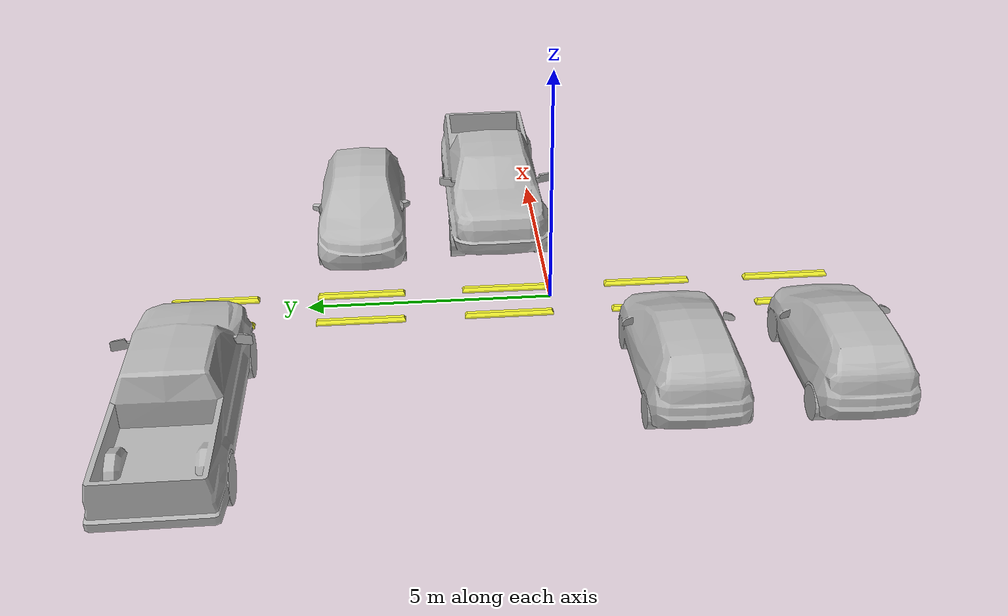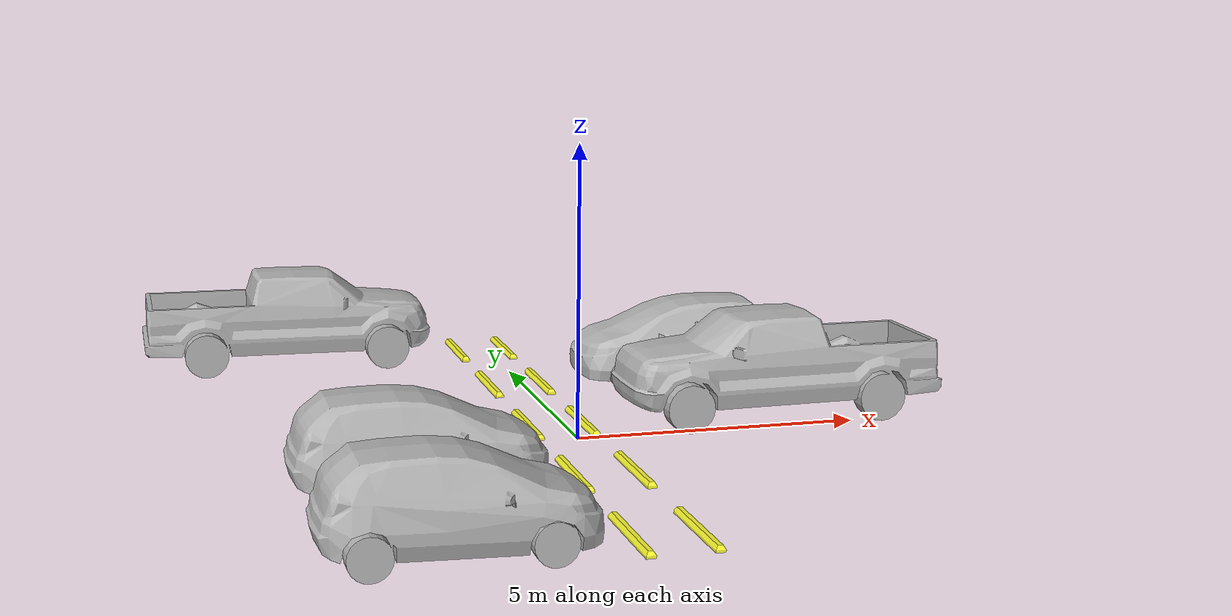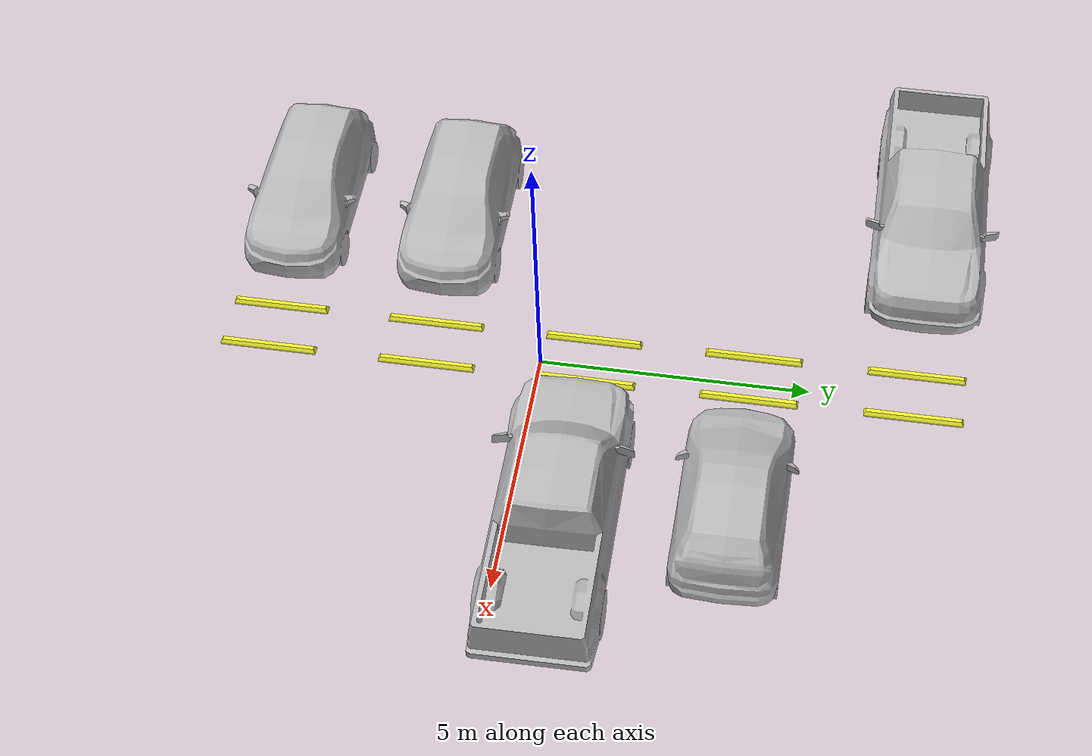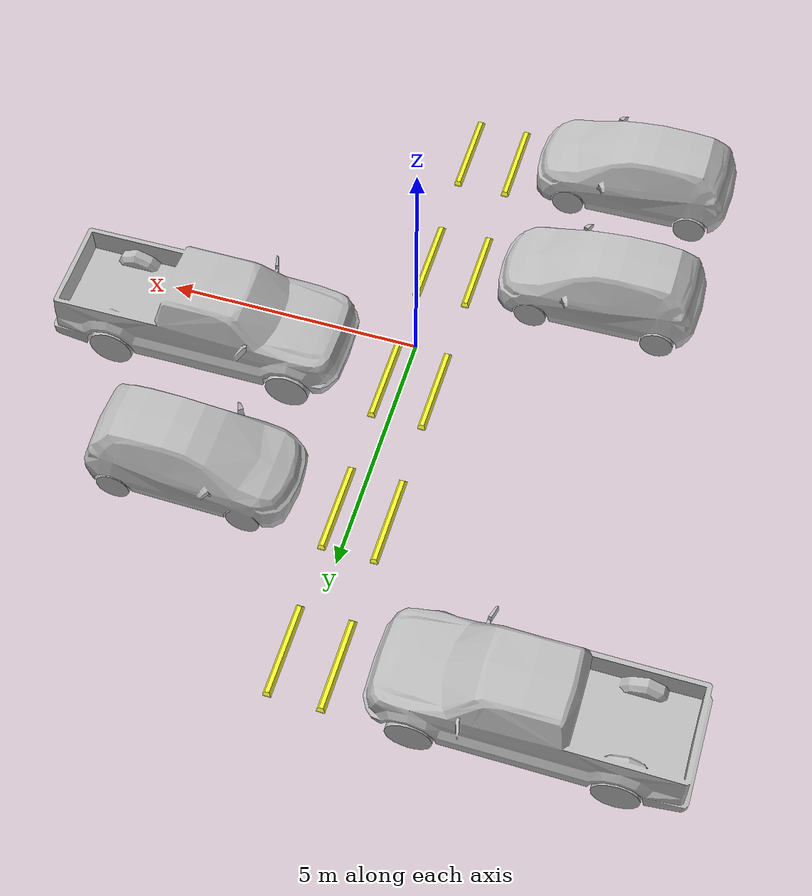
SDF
<?xml version='1.0'?>
<sdf version='1.7'>
  <model name='parking_version_8'>
    <model name='parking_version_3'>
      <model name='drc_practice_yellow_parking_block'>
        <static>1</static>
        <link name='link'>
          <visual name='visual'>
            <geometry>
              <mesh>
                <uri>model://drc_practice_yellow_parking_block/meshes/block.dae</uri>
              </mesh>
            </geometry>
          </visual>
          <collision name='collision'>
            <geometry>
              <mesh>
                <uri>model://drc_practice_yellow_parking_block/meshes/block.dae</uri>
              </mesh>
            </geometry>
            <max_contacts>10</max_contacts>
            <surface>
              <contact>
                <ode/>
              </contact>
              <bounce/>
              <friction>
                <torsional>
                  <ode/>
                </torsional>
                <ode/>
              </friction>
            </surface>
          </collision>
          <self_collide>0</self_collide>
          <enable_wind>0</enable_wind>
          <kinematic>0</kinematic>
        </link>
        <pose>0.413366 6.39123 0 0 -0 0</pose>
      </model>
      <model name='drc_practice_yellow_parking_block_clone_1'>
        <static>1</static>
        <link name='link'>
          <visual name='visual'>
            <geometry>
              <mesh>
                <uri>model://drc_practice_yellow_parking_block/meshes/block.dae</uri>
              </mesh>
            </geometry>
          </visual>
          <collision name='collision'>
            <geometry>
              <mesh>
                <uri>model://drc_practice_yellow_parking_block/meshes/block.dae</uri>
              </mesh>
            </geometry>
            <max_contacts>10</max_contacts>
            <surface>
              <contact>
                <ode/>
              </contact>
              <bounce/>
              <friction>
                <torsional>
                  <ode/>
                </torsional>
                <ode/>
              </friction>
            </surface>
          </collision>
          <self_collide>0</self_collide>
          <enable_wind>0</enable_wind>
          <kinematic>0</kinematic>
        </link>
        <pose>0.405987 3.37653 0 0 -0 0</pose>
      </model>
      <model name='drc_practice_yellow_parking_block_clone_1_clone'>
        <static>1</static>
        <link name='link'>
          <visual name='visual'>
            <geometry>
              <mesh>
                <uri>model://drc_practice_yellow_parking_block/meshes/block.dae</uri>
              </mesh>
            </geometry>
          </visual>
          <collision name='collision'>
            <geometry>
              <mesh>
                <uri>model://drc_practice_yellow_parking_block/meshes/block.dae</uri>
              </mesh>
            </geometry>
            <max_contacts>10</max_contacts>
            <surface>
              <contact>
                <ode/>
              </contact>
              <bounce/>
              <friction>
                <torsional>
                  <ode/>
                </torsional>
                <ode/>
              </friction>
            </surface>
          </collision>
          <self_collide>0</self_collide>
          <enable_wind>0</enable_wind>
          <kinematic>0</kinematic>
        </link>
        <pose>0.410253 0.377816 0 0 -0 0</pose>
      </model>
      <model name='drc_practice_yellow_parking_block_clone_1_clone_clone'>
        <static>1</static>
        <link name='link'>
          <visual name='visual'>
            <geometry>
              <mesh>
                <uri>model://drc_practice_yellow_parking_block/meshes/block.dae</uri>
              </mesh>
            </geometry>
          </visual>
          <collision name='collision'>
            <geometry>
              <mesh>
                <uri>model://drc_practice_yellow_parking_block/meshes/block.dae</uri>
              </mesh>
            </geometry>
            <max_contacts>10</max_contacts>
            <surface>
              <contact>
                <ode/>
              </contact>
              <bounce/>
              <friction>
                <torsional>
                  <ode/>
                </torsional>
                <ode/>
              </friction>
            </surface>
          </collision>
          <self_collide>0</self_collide>
          <enable_wind>0</enable_wind>
          <kinematic>0</kinematic>
        </link>
        <pose>0.410395 -2.63114 0 0 -0 0</pose>
      </model>
      <static>1</static>
      <allow_auto_disable>1</allow_auto_disable>
      <pose>-1.05927 0.530978 0 0 -0 0</pose>
    </model>
    <model name='drc_practice_yellow_parking_block'>
      <static>1</static>
      <link name='link'>
        <visual name='visual'>
          <geometry>
            <mesh>
              <uri>model://drc_practice_yellow_parking_block/meshes/block.dae</uri>
            </mesh>
          </geometry>
        </visual>
        <collision name='collision'>
          <geometry>
            <mesh>
              <uri>model://drc_practice_yellow_parking_block/meshes/block.dae</uri>
            </mesh>
          </geometry>
          <max_contacts>10</max_contacts>
          <surface>
            <contact>
              <ode/>
            </contact>
            <bounce/>
            <friction>
              <torsional>
                <ode/>
              </torsional>
              <ode/>
            </friction>
          </surface>
        </collision>
        <self_collide>0</self_collide>
        <enable_wind>0</enable_wind>
        <kinematic>0</kinematic>
      </link>
      <pose>0.346026 -2.08831 0 0 -0 0</pose>
    </model>
    <model name='drc_practice_yellow_parking_block_clone'>
      <static>1</static>
      <link name='link'>
        <visual name='visual'>
          <geometry>
            <mesh>
              <uri>model://drc_practice_yellow_parking_block/meshes/block.dae</uri>
            </mesh>
          </geometry>
        </visual>
        <collision name='collision'>
          <geometry>
            <mesh>
              <uri>model://drc_practice_yellow_parking_block/meshes/block.dae</uri>
            </mesh>
          </geometry>
          <max_contacts>10</max_contacts>
          <surface>
            <contact>
              <ode/>
            </contact>
            <bounce/>
            <friction>
              <torsional>
                <ode/>
              </torsional>
              <ode/>
            </friction>
          </surface>
        </collision>
        <self_collide>0</self_collide>
        <enable_wind>0</enable_wind>
        <kinematic>0</kinematic>
      </link>
      <pose>0.345776 -5.08491 0 0 -0 0</pose>
    </model>
    <model name='drc_practice_yellow_parking_block_clone_clone'>
      <static>1</static>
      <link name='link'>
        <visual name='visual'>
          <geometry>
            <mesh>
              <uri>model://drc_practice_yellow_parking_block/meshes/block.dae</uri>
            </mesh>
          </geometry>
        </visual>
        <collision name='collision'>
          <geometry>
            <mesh>
              <uri>model://drc_practice_yellow_parking_block/meshes/block.dae</uri>
            </mesh>
          </geometry>
          <max_contacts>10</max_contacts>
          <surface>
            <contact>
              <ode/>
            </contact>
            <bounce/>
            <friction>
              <torsional>
                <ode/>
              </torsional>
              <ode/>
            </friction>
          </surface>
        </collision>
        <self_collide>0</self_collide>
        <enable_wind>0</enable_wind>
        <kinematic>0</kinematic>
      </link>
      <pose>0.342782 0.912728 0 0 -0 0</pose>
    </model>
    <model name='drc_practice_yellow_parking_block_clone_clone_0'>
      <static>1</static>
      <link name='link'>
        <visual name='visual'>
          <geometry>
            <mesh>
              <uri>model://drc_practice_yellow_parking_block/meshes/block.dae</uri>
            </mesh>
          </geometry>
        </visual>
        <collision name='collision'>
          <geometry>
            <mesh>
              <uri>model://drc_practice_yellow_parking_block/meshes/block.dae</uri>
            </mesh>
          </geometry>
          <max_contacts>10</max_contacts>
          <surface>
            <contact>
              <ode/>
            </contact>
            <bounce/>
            <friction>
              <torsional>
                <ode/>
              </torsional>
              <ode/>
            </friction>
          </surface>
        </collision>
        <self_collide>0</self_collide>
        <enable_wind>0</enable_wind>
        <kinematic>0</kinematic>
      </link>
      <pose>0.344818 3.90903 0 0 -0 0</pose>
    </model>
    <model name='drc_practice_yellow_parking_block_clone_clone_0_clone'>
      <static>1</static>
      <link name='link'>
        <visual name='visual'>
          <geometry>
            <mesh>
              <uri>model://drc_practice_yellow_parking_block/meshes/block.dae</uri>
            </mesh>
          </geometry>
        </visual>
        <collision name='collision'>
          <geometry>
            <mesh>
              <uri>model://drc_practice_yellow_parking_block/meshes/block.dae</uri>
            </mesh>
          </geometry>
          <max_contacts>10</max_contacts>
          <surface>
            <contact>
              <ode/>
            </contact>
            <bounce/>
            <friction>
              <torsional>
                <ode/>
              </torsional>
              <ode/>
            </friction>
          </surface>
        </collision>
        <self_collide>0</self_collide>
        <enable_wind>0</enable_wind>
        <kinematic>0</kinematic>
      </link>
      <pose>0.336101 6.91064 0 0 -0 0</pose>
    </model>
    <model name='drc_practice_yellow_parking_block_clone_clone_1'>
      <static>1</static>
      <link name='link'>
        <visual name='visual'>
          <geometry>
            <mesh>
              <uri>model://drc_practice_yellow_parking_block/meshes/block.dae</uri>
            </mesh>
          </geometry>
        </visual>
        <collision name='collision'>
          <geometry>
            <mesh>
              <uri>model://drc_practice_yellow_parking_block/meshes/block.dae</uri>
            </mesh>
          </geometry>
          <max_contacts>10</max_contacts>
          <surface>
            <contact>
              <ode/>
            </contact>
            <bounce/>
            <friction>
              <torsional>
                <ode/>
              </torsional>
              <ode/>
            </friction>
          </surface>
        </collision>
        <self_collide>0</self_collide>
        <enable_wind>0</enable_wind>
        <kinematic>0</kinematic>
      </link>
      <pose>-0.656234 -5.09016 0 0 -0 0</pose>
    </model>
    <model name='hatchback_blue'>
      <static>1</static>
      <link name='link'>
        <collision name='collision'>
          <pose>0 0 0 0 -0 1.5708</pose>
          <geometry>
            <mesh>
              <scale>0.0254 0.0254 0.0254</scale>
              <uri>model://hatchback_blue/meshes/hatchback.obj</uri>
            </mesh>
          </geometry>
        </collision>
        <visual name='visual'>
          <pose>0 0 0 0 -0 1.5708</pose>
          <geometry>
            <mesh>
              <scale>0.0254 0.0254 0.0254</scale>
              <uri>model://hatchback_blue/meshes/hatchback.obj</uri>
            </mesh>
          </geometry>
        </visual>
      </link>
      <pose>-3.51799 -5.08519 0 0 -0 0</pose>
    </model>
    <model name='hatchback_red'>
      <static>1</static>
      <link name='link'>
        <collision name='collision'>
          <pose>0 0 0 0 -0 1.5708</pose>
          <geometry>
            <mesh>
              <scale>0.0254 0.0254 0.0254</scale>
              <uri>model://hatchback_red/meshes/hatchback.obj</uri>
            </mesh>
          </geometry>
        </collision>
        <visual name='visual'>
          <pose>0 0 0 0 -0 1.5708</pose>
          <geometry>
            <mesh>
              <scale>0.0254 0.0254 0.0254</scale>
              <uri>model://hatchback_red/meshes/hatchback.obj</uri>
            </mesh>
          </geometry>
        </visual>
      </link>
      <pose>-3.50588 -2.09874 0 0 -0 0</pose>
    </model>
    <model name='hatchback_red_clone'>
      <static>1</static>
      <link name='link'>
        <collision name='collision'>
          <pose>0 0 0 0 -0 1.5708</pose>
          <geometry>
            <mesh>
              <scale>0.0254 0.0254 0.0254</scale>
              <uri>model://hatchback_red/meshes/hatchback.obj</uri>
            </mesh>
          </geometry>
        </collision>
        <visual name='visual'>
          <pose>0 0 0 0 -0 1.5708</pose>
          <geometry>
            <mesh>
              <scale>0.0254 0.0254 0.0254</scale>
              <uri>model://hatchback_red/meshes/hatchback.obj</uri>
            </mesh>
          </geometry>
        </visual>
      </link>
      <pose>3.37882 3.89721 0 0 -0 3.13941</pose>
    </model>
    <model name='pickup'>
      <static>1</static>
      <link name='link'>
        <collision name='collision'>
          <pose>0 0 0 0 0 -1.5708</pose>
          <geometry>
            <mesh>
              <uri>model://pickup/meshes/pickup.dae</uri>
            </mesh>
          </geometry>
        </collision>
        <visual name='visual'>
          <pose>0 0 0 0 0 -1.5708</pose>
          <geometry>
            <mesh>
              <uri>model://pickup/meshes/pickup.dae</uri>
            </mesh>
          </geometry>
        </visual>
      </link>
      <pose>3.7535 0.930558 0 0 -0 -3.13348</pose>
    </model>
    <model name='pickup_clone'>
      <static>1</static>
      <link name='link'>
        <collision name='collision'>
          <pose>0 0 0 0 0 -1.5708</pose>
          <geometry>
            <mesh>
              <uri>model://pickup/meshes/pickup.dae</uri>
            </mesh>
          </geometry>
        </collision>
        <visual name='visual'>
          <pose>0 0 0 0 0 -1.5708</pose>
          <geometry>
            <mesh>
              <uri>model://pickup/meshes/pickup.dae</uri>
            </mesh>
          </geometry>
        </visual>
      </link>
      <pose>-4.0363 6.92984 0 0 0 -0.003118</pose>
    </model>
    <static>1</static>
    <allow_auto_disable>1</allow_auto_disable>
  </model>
</sdf>
